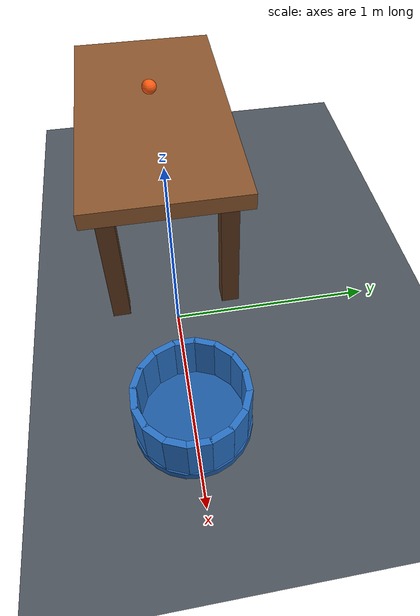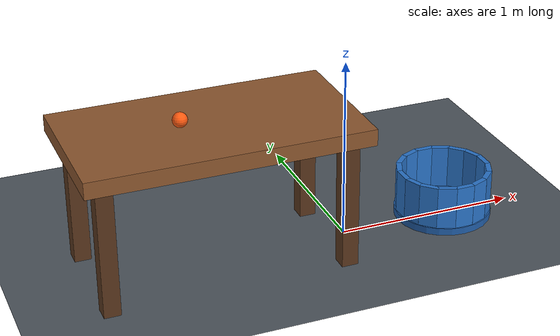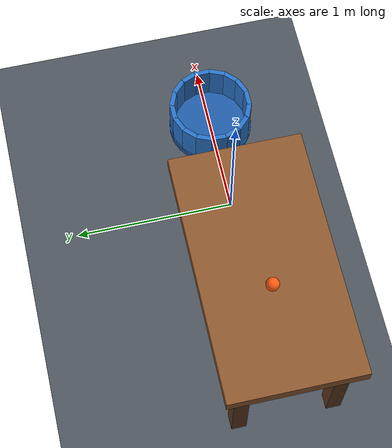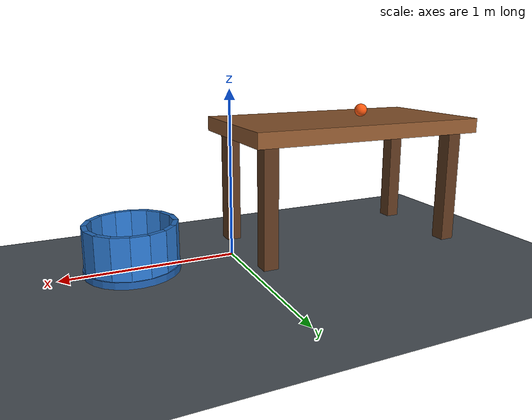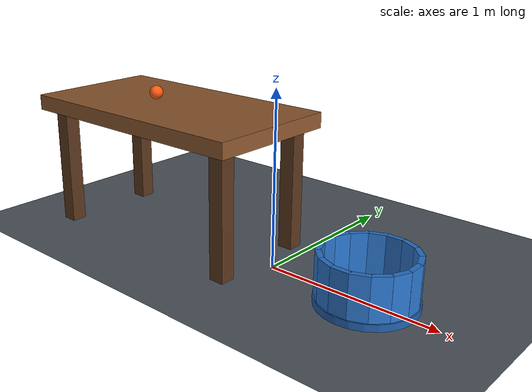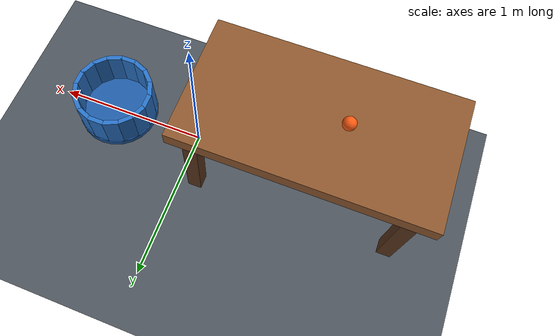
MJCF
<mujoco model="rolling_ball_into_bucket">
  <compiler angle="degree"/>
  <option timestep="0.002" gravity="0 0 -9.81" integrator="implicitfast" cone="elliptic" iterations="100"/>

  <visual>
    <headlight ambient="0.4 0.4 0.4" diffuse="0.7 0.7 0.7" specular="0.2 0.2 0.2"/>
  </visual>

  <worldbody>
    <light name="overhead" pos="-0.5 -1 3" dir="0.2 0.3 -1"/>
    <camera name="overview" pos="2.2 -3.5 2.1" xyaxes="0.85 0.53 0 -0.23 0.37 0.90"/>

    <geom name="floor" type="plane" pos="0 0 0" size="5 5 0.1" condim="6" friction="1 0.01 0.02" solref="0.01 1" rgba="0.30 0.33 0.36 1"/>

    <!-- The tabletop ends at x=0 and its top is at z=0.8 m. -->
    <body name="table" pos="-0.75 0 0">
      <geom name="table_top" type="box" pos="0 0 0.755" size="0.75 0.4 0.045" condim="6" friction="0.6 0.003 0.00001" solref="0.01 1" rgba="0.55 0.34 0.18 1"/>
      <geom name="table_leg_front_left" type="box" pos="-0.64 -0.29 0.355" size="0.045 0.045 0.355" rgba="0.35 0.21 0.11 1"/>
      <geom name="table_leg_front_right" type="box" pos="0.64 -0.29 0.355" size="0.045 0.045 0.355" rgba="0.35 0.21 0.11 1"/>
      <geom name="table_leg_back_left" type="box" pos="-0.64 0.29 0.355" size="0.045 0.045 0.355" rgba="0.35 0.21 0.11 1"/>
      <geom name="table_leg_back_right" type="box" pos="0.64 0.29 0.355" size="0.045 0.045 0.355" rgba="0.35 0.21 0.11 1"/>
    </body>

    <!-- Open bucket: a solid base and overlapping tangential wall panels.
         Its centre is exactly 0.60 m beyond the table edge. -->
    <body name="bucket" pos="0.6 0 0">
      <geom name="bucket_base" type="cylinder" pos="0 0 0.02" size="0.27 0.02" condim="6" friction="0.9 0.01 0.02" solref="0.01 1" rgba="0.12 0.36 0.65 1"/>
      <geom name="bucket_wall_00" type="box" pos="0.245 0 0.16" euler="0 0 0" size="0.015 0.052 0.12" condim="6" friction="0.9 0.01 0.02" solref="0.01 1" rgba="0.16 0.45 0.78 1"/>
      <geom name="bucket_wall_01" type="box" pos="0.226351 0.093757 0.16" euler="0 0 22.5" size="0.015 0.052 0.12" condim="6" friction="0.9 0.01 0.02" solref="0.01 1" rgba="0.16 0.45 0.78 1"/>
      <geom name="bucket_wall_02" type="box" pos="0.173241 0.173241 0.16" euler="0 0 45" size="0.015 0.052 0.12" condim="6" friction="0.9 0.01 0.02" solref="0.01 1" rgba="0.16 0.45 0.78 1"/>
      <geom name="bucket_wall_03" type="box" pos="0.093757 0.226351 0.16" euler="0 0 67.5" size="0.015 0.052 0.12" condim="6" friction="0.9 0.01 0.02" solref="0.01 1" rgba="0.16 0.45 0.78 1"/>
      <geom name="bucket_wall_04" type="box" pos="0 0.245 0.16" euler="0 0 90" size="0.015 0.052 0.12" condim="6" friction="0.9 0.01 0.02" solref="0.01 1" rgba="0.16 0.45 0.78 1"/>
      <geom name="bucket_wall_05" type="box" pos="-0.093757 0.226351 0.16" euler="0 0 112.5" size="0.015 0.052 0.12" condim="6" friction="0.9 0.01 0.02" solref="0.01 1" rgba="0.16 0.45 0.78 1"/>
      <geom name="bucket_wall_06" type="box" pos="-0.173241 0.173241 0.16" euler="0 0 135" size="0.015 0.052 0.12" condim="6" friction="0.9 0.01 0.02" solref="0.01 1" rgba="0.16 0.45 0.78 1"/>
      <geom name="bucket_wall_07" type="box" pos="-0.226351 0.093757 0.16" euler="0 0 157.5" size="0.015 0.052 0.12" condim="6" friction="0.9 0.01 0.02" solref="0.01 1" rgba="0.16 0.45 0.78 1"/>
      <geom name="bucket_wall_08" type="box" pos="-0.245 0 0.16" euler="0 0 180" size="0.015 0.052 0.12" condim="6" friction="0.9 0.01 0.02" solref="0.01 1" rgba="0.16 0.45 0.78 1"/>
      <geom name="bucket_wall_09" type="box" pos="-0.226351 -0.093757 0.16" euler="0 0 202.5" size="0.015 0.052 0.12" condim="6" friction="0.9 0.01 0.02" solref="0.01 1" rgba="0.16 0.45 0.78 1"/>
      <geom name="bucket_wall_10" type="box" pos="-0.173241 -0.173241 0.16" euler="0 0 225" size="0.015 0.052 0.12" condim="6" friction="0.9 0.01 0.02" solref="0.01 1" rgba="0.16 0.45 0.78 1"/>
      <geom name="bucket_wall_11" type="box" pos="-0.093757 -0.226351 0.16" euler="0 0 247.5" size="0.015 0.052 0.12" condim="6" friction="0.9 0.01 0.02" solref="0.01 1" rgba="0.16 0.45 0.78 1"/>
      <geom name="bucket_wall_12" type="box" pos="0 -0.245 0.16" euler="0 0 270" size="0.015 0.052 0.12" condim="6" friction="0.9 0.01 0.02" solref="0.01 1" rgba="0.16 0.45 0.78 1"/>
      <geom name="bucket_wall_13" type="box" pos="0.093757 -0.226351 0.16" euler="0 0 292.5" size="0.015 0.052 0.12" condim="6" friction="0.9 0.01 0.02" solref="0.01 1" rgba="0.16 0.45 0.78 1"/>
      <geom name="bucket_wall_14" type="box" pos="0.173241 -0.173241 0.16" euler="0 0 315" size="0.015 0.052 0.12" condim="6" friction="0.9 0.01 0.02" solref="0.01 1" rgba="0.16 0.45 0.78 1"/>
      <geom name="bucket_wall_15" type="box" pos="0.226351 -0.093757 0.16" euler="0 0 337.5" size="0.015 0.052 0.12" condim="6" friction="0.9 0.01 0.02" solref="0.01 1" rgba="0.16 0.45 0.78 1"/>
    </body>

    <body name="ball" pos="-0.9 0 0.84">
      <freejoint name="ball_free"/>
      <geom name="ball" type="sphere" size="0.04" mass="0.08" condim="6" friction="0.6 0.003 0.00001" solref="0.01 1" rgba="1 0.35 0.06 1"/>
    </body>
  </worldbody>

  <keyframe>
    <!-- Pure rolling initially: vx = radius * angular velocity about y. -->
    <key name="start" qpos="-0.9 0 0.84 1 0 0 0" qvel="1.55 0 0 0 38.75 0"/>
  </keyframe>
</mujoco>
